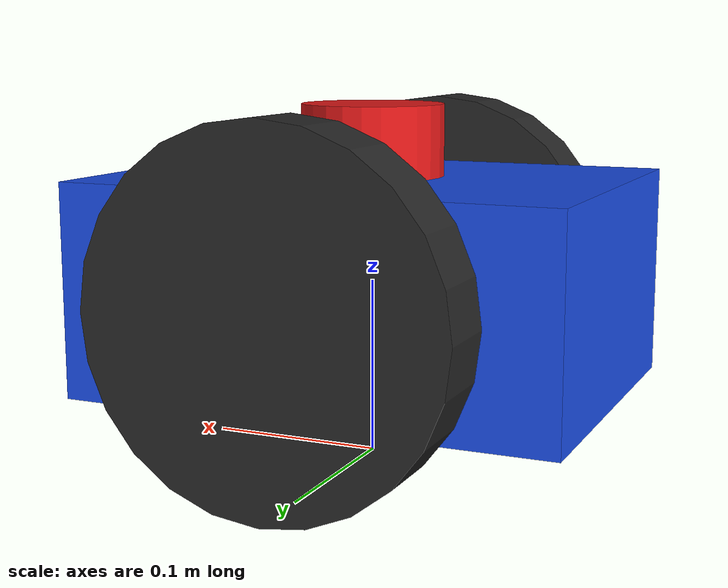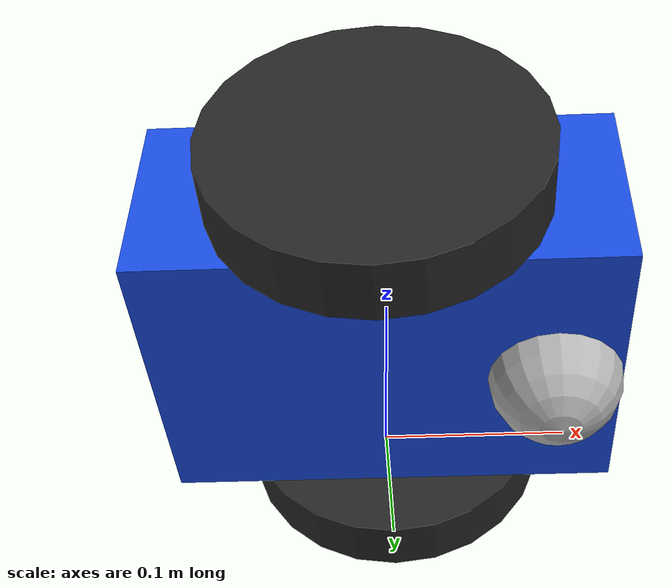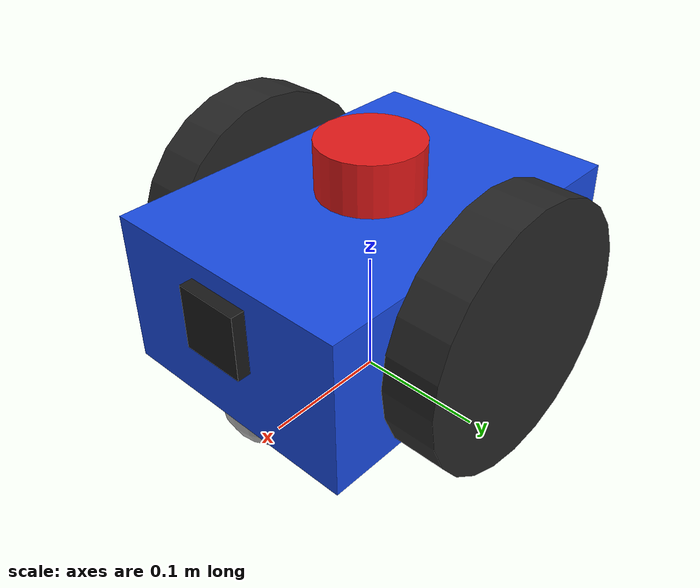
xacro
<?xml version="1.0"?>
<robot name="maze_robot" xmlns:xacro="http://ros.org/wiki/xacro">

  <link name="base_footprint"/>

  <joint name="base_joint" type="fixed">
    <parent link="base_footprint"/>
    <child link="base_link"/>
    <origin xyz="0 0 0.1" rpy="0 0 0"/>
  </joint>

  <link name="base_link">
    <visual>
      <origin xyz="0 0 0" rpy="0 0 0"/>
      <geometry><box size="0.28 0.20 0.12"/></geometry>
      <material name="blue"><color rgba="0.1 0.3 0.9 1.0"/></material>
    </visual>
    <collision>
      <origin xyz="0 0 0" rpy="0 0 0"/>
      <geometry><box size="0.28 0.20 0.12"/></geometry>
    </collision>
    <inertial>
      <mass value="1.5"/>
      <inertia ixx="0.00745" ixy="0" ixz="0" iyy="0.01257" iyz="0" izz="0.01540"/>
    </inertial>
  </link>

  <link name="left_wheel">
    <visual>
      <origin xyz="0 0 0" rpy="0 0 0"/>
      <geometry><cylinder radius="0.1" length="0.04"/></geometry>
      <material name="darkgrey"><color rgba="0.15 0.15 0.15 1.0"/></material>
    </visual>
    <collision>
      <origin xyz="0 0 0" rpy="0 0 0"/>
      <geometry><cylinder radius="0.1" length="0.04"/></geometry>
    </collision>
    <inertial>
      <mass value="0.3"/>
      <inertia ixx="0.000916" ixy="0" ixz="0" iyy="0.000916" iyz="0" izz="0.0015"/>
    </inertial>
  </link>
  <joint name="left_wheel_joint" type="continuous">
    <parent link="base_link"/>
    <child link="left_wheel"/>
    <origin xyz="0 0.12 0" rpy="-1.5708 0 0"/>
    <axis xyz="0 0 1"/>
  </joint>

  <link name="right_wheel">
    <visual>
      <origin xyz="0 0 0" rpy="0 0 0"/>
      <geometry><cylinder radius="0.1" length="0.04"/></geometry>
      <material name="darkgrey"><color rgba="0.15 0.15 0.15 1.0"/></material>
    </visual>
    <collision>
      <origin xyz="0 0 0" rpy="0 0 0"/>
      <geometry><cylinder radius="0.1" length="0.04"/></geometry>
    </collision>
    <inertial>
      <mass value="0.3"/>
      <inertia ixx="0.000916" ixy="0" ixz="0" iyy="0.000916" iyz="0" izz="0.0015"/>
    </inertial>
  </link>
  <joint name="right_wheel_joint" type="continuous">
    <parent link="base_link"/>
    <child link="right_wheel"/>
    <origin xyz="0 -0.12 0" rpy="-1.5708 0 0"/>
    <axis xyz="0 0 1"/>
  </joint>

  <link name="caster_wheel">
    <visual>
      <origin xyz="0 0 0" rpy="0 0 0"/>
      <geometry><sphere radius="0.04"/></geometry>
      <material name="lightgrey"><color rgba="0.7 0.7 0.7 1.0"/></material>
    </visual>
    <collision>
      <origin xyz="0 0 0" rpy="0 0 0"/>
      <geometry><sphere radius="0.04"/></geometry>
    </collision>
    <inertial>
      <mass value="0.05"/>
      <inertia ixx="0.000032" ixy="0" ixz="0" iyy="0.000032" iyz="0" izz="0.000032"/>
    </inertial>
  </link>
  <joint name="caster_joint" type="fixed">
    <parent link="base_link"/>
    <child link="caster_wheel"/>
    <origin xyz="0.10 0 -0.06" rpy="0 0 0"/>
  </joint>

  <link name="laser_link">
    <visual>
      <origin xyz="0 0 0" rpy="0 0 0"/>
      <geometry><cylinder radius="0.04" length="0.04"/></geometry>
      <material name="red"><color rgba="0.9 0.1 0.1 1.0"/></material>
    </visual>
    <collision>
      <origin xyz="0 0 0" rpy="0 0 0"/>
      <geometry><cylinder radius="0.04" length="0.04"/></geometry>
    </collision>
    <inertial>
      <mass value="0.05"/>
      <inertia ixx="0.00003" ixy="0" ixz="0" iyy="0.00003" iyz="0" izz="0.00004"/>
    </inertial>
  </link>
  <joint name="laser_joint" type="fixed">
    <parent link="base_link"/>
    <child link="laser_link"/>
    <origin xyz="0 0 0.08" rpy="0 0 0"/>
  </joint>

  <link name="camera_link">
    <visual>
      <geometry><box size="0.02 0.05 0.05"/></geometry>
      <material name="black"><color rgba="0.1 0.1 0.1 1.0"/></material>
    </visual>
    <collision>
      <geometry><box size="0.02 0.05 0.05"/></geometry>
    </collision>
    <inertial>
      <mass value="0.01"/>
      <inertia ixx="0.00001" ixy="0" ixz="0" iyy="0.00001" iyz="0" izz="0.00001"/>
    </inertial>
  </link>
  <joint name="camera_joint" type="fixed">
    <parent link="base_link"/>
    <child link="camera_link"/>
    <origin xyz="0.14 0 0.02" rpy="0 0 0"/>
  </joint>

  <gazebo reference="laser_joint"><preserveFixedJoint>true</preserveFixedJoint></gazebo>
  <gazebo reference="caster_joint"><preserveFixedJoint>true</preserveFixedJoint></gazebo>
  <gazebo reference="camera_joint"><preserveFixedJoint>true</preserveFixedJoint></gazebo>

  <gazebo reference="left_wheel"><mu1>2.0</mu1><mu2>2.0</mu2></gazebo>
  <gazebo reference="right_wheel"><mu1>2.0</mu1><mu2>2.0</mu2></gazebo>
  <gazebo reference="caster_wheel"><mu1>0.0</mu1><mu2>0.0</mu2></gazebo>

  <gazebo reference="laser_link">
    <sensor name="lidar" type="gpu_lidar">
      <topic>scan</topic>
      <gz_frame_id>laser_link</gz_frame_id>
      <update_rate>15</update_rate>
      <visualize>true</visualize>
      <lidar>
        <scan>
          <horizontal><samples>360</samples><resolution>1</resolution><min_angle>-3.14159</min_angle><max_angle>3.14159</max_angle></horizontal>
        </scan>
        <range><min>0.12</min><max>12.0</max><resolution>0.01</resolution></range>
      </lidar>
    </sensor>
  </gazebo>

  <gazebo>
    <plugin filename="gz-sim-diff-drive-system" name="gz::sim::systems::DiffDrive">
      <left_joint>left_wheel_joint</left_joint>
      <right_joint>right_wheel_joint</right_joint>
      <wheel_separation>0.24</wheel_separation>
      <wheel_radius>0.1</wheel_radius>
      <max_linear_acceleration>3.5</max_linear_acceleration>
      <max_angular_acceleration>4.5</max_angular_acceleration>
      <topic>cmd_vel</topic>
      <frame_id>odom</frame_id>
      <child_frame_id>base_footprint</child_frame_id>
      <tf_topic>/tf</tf_topic>
      <odom_topic>/odom</odom_topic>
      <odom_publish_frequency>50</odom_publish_frequency>
    </plugin>

    <plugin filename="gz-sim-joint-state-publisher-system" name="gz::sim::systems::JointStatePublisher">
      <topic>joint_states</topic>
      <joint_name>left_wheel_joint</joint_name>
      <joint_name>right_wheel_joint</joint_name>
    </plugin>
  </gazebo>

</robot>
